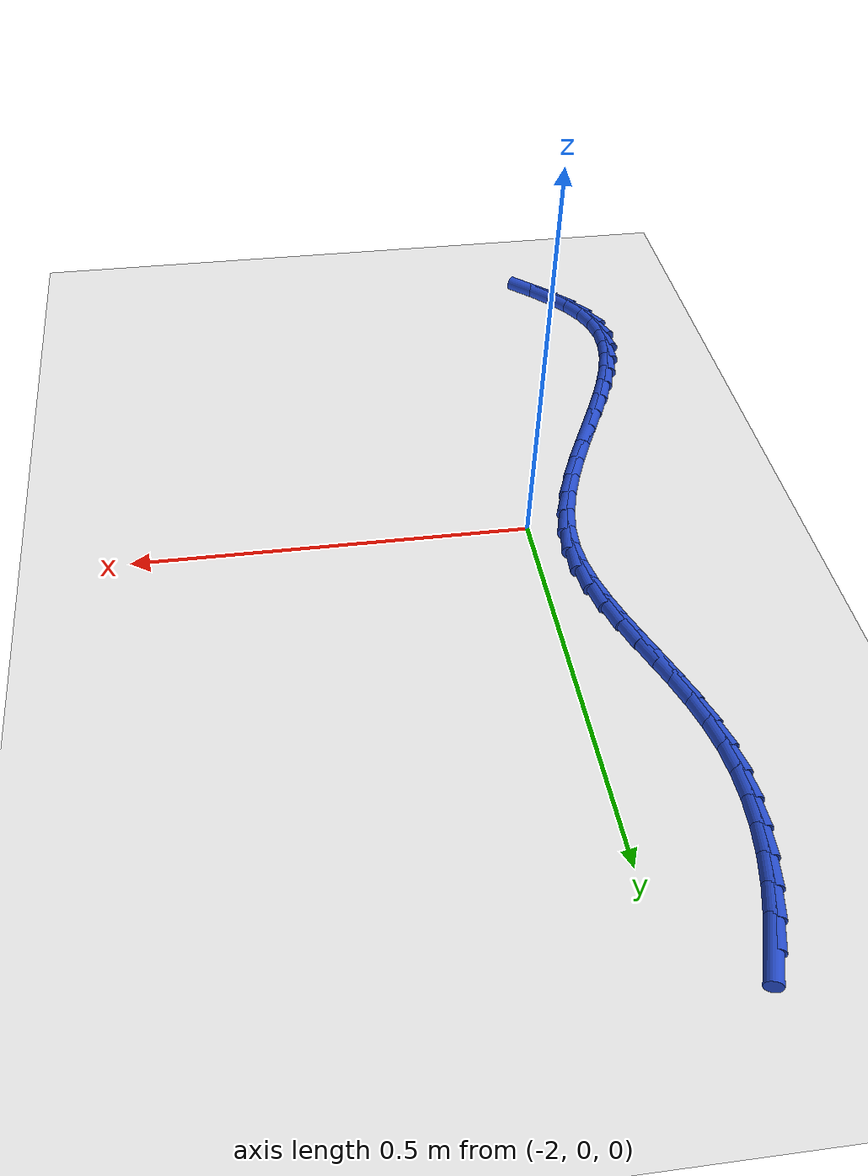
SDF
<sdf version="1.6">
 <world name="default">
  <model name="ground_plane">
   <static>1</static>
   <link name="link">
    <collision name="collision">
     <geometry><plane><normal>0 0 1</normal><size>100 100</size></plane></geometry>
     <surface><friction><ode><mu>100</mu><mu2>50</mu2></ode></friction></surface>
    </collision>
    <visual name="visual">
     <cast_shadows>0</cast_shadows>
     <geometry><plane><normal>0 0 1</normal><size>100 100</size></plane></geometry>
     <material>
      <script><uri>file://media/materials/scripts/gazebo.material</uri><name>Gazebo/WhiteGlow</name></script>
     </material>
    </visual>
   </link>
  </model>
  <model name="line">
   <link name="link_92">
    <pose>-2.102838511471747 0.6065075423157977 0.01 0 1.57 1.2218075934569517</pose>
    <collision name="collision">
     <geometry><cylinder><radius>0.01</radius><length>0.08</length></cylinder></geometry>
    </collision>
    <visual name="visual">
     <material>
      <script><name>Gazebo/Blue</name><uri>file://media/materials/scripts/gazebo.material</uri></script>
     </material>
     <geometry><cylinder><radius>0.01</radius><length>0.08</length></cylinder></geometry>
    </visual>
   </link>
   <link name="link_93">
    <pose>-2.114453274483946 0.5745885846058175 0.01 0 1.57 1.2881082606237912</pose>
    <collision name="collision">
     <geometry><cylinder><radius>0.01</radius><length>0.08</length></cylinder></geometry>
    </collision>
    <visual name="visual">
     <material>
      <script><name>Gazebo/Blue</name><uri>file://media/materials/scripts/gazebo.material</uri></script>
     </material>
     <geometry><cylinder><radius>0.01</radius><length>0.08</length></cylinder></geometry>
    </visual>
   </link>
   <link name="link_94">
    <pose>-2.1239597318940926 0.5418603915994057 0.01 0 1.57 1.3565881906018822</pose>
    <collision name="collision">
     <geometry><cylinder><radius>0.01</radius><length>0.08</length></cylinder></geometry>
    </collision>
    <visual name="visual">
     <material>
      <script><name>Gazebo/Blue</name><uri>file://media/materials/scripts/gazebo.material</uri></script>
     </material>
     <geometry><cylinder><radius>0.01</radius><length>0.08</length></cylinder></geometry>
    </visual>
   </link>
   <link name="link_95">
    <pose>-2.131209856433984 0.5085334928047134 0.01 0 1.57 1.4280469799502449</pose>
    <collision name="collision">
     <geometry><cylinder><radius>0.01</radius><length>0.08</length></cylinder></geometry>
    </collision>
    <visual name="visual">
     <material>
      <script><name>Gazebo/Blue</name><uri>file://media/materials/scripts/gazebo.material</uri></script>
     </material>
     <geometry><cylinder><radius>0.01</radius><length>0.08</length></cylinder></geometry>
    </visual>
   </link>
   <link name="link_96">
    <pose>-2.136055620835418 0.47481841772989336 0.01 0 1.57 1.5032335504921208</pose>
    <collision name="collision">
     <geometry><cylinder><radius>0.01</radius><length>0.08</length></cylinder></geometry>
    </collision>
    <visual name="visual">
     <material>
      <script><name>Gazebo/Blue</name><uri>file://media/materials/scripts/gazebo.material</uri></script>
     </material>
     <geometry><cylinder><radius>0.01</radius><length>0.08</length></cylinder></geometry>
    </visual>
   </link>
   <link name="link_97">
    <pose>-2.138348997830191 0.440925695883097 0.01 0 1.57 -1.5587756531766483</pose>
    <collision name="collision">
     <geometry><cylinder><radius>0.01</radius><length>0.08</length></cylinder></geometry>
    </collision>
    <visual name="visual">
     <material>
      <script><name>Gazebo/Blue</name><uri>file://media/materials/scripts/gazebo.material</uri></script>
     </material>
     <geometry><cylinder><radius>0.01</radius><length>0.08</length></cylinder></geometry>
    </visual>
   </link>
   <link name="link_98">
    <pose>-2.137941960150101 0.4070658567724758 0.01 0 1.57 -1.4742554450893834</pose>
    <collision name="collision">
     <geometry><cylinder><radius>0.01</radius><length>0.08</length></cylinder></geometry>
    </collision>
    <visual name="visual">
     <material>
      <script><name>Gazebo/Blue</name><uri>file://media/materials/scripts/gazebo.material</uri></script>
     </material>
     <geometry><cylinder><radius>0.01</radius><length>0.08</length></cylinder></geometry>
    </visual>
   </link>
   <link name="link_99">
    <pose>-2.134686480526944 0.37344942990618246 0.01 0 1.57 -1.3850708267358485</pose>
    <collision name="collision">
     <geometry><cylinder><radius>0.01</radius><length>0.08</length></cylinder></geometry>
    </collision>
    <visual name="visual">
     <material>
      <script><name>Gazebo/Blue</name><uri>file://media/materials/scripts/gazebo.material</uri></script>
     </material>
     <geometry><cylinder><radius>0.01</radius><length>0.08</length></cylinder></geometry>
    </visual>
   </link>
   <link name="link_100">
    <pose>-2.1284543073538105 0.34028031528387676 0.01 0 1.57 -1.305078085936975</pose>
    <collision name="collision">
     <geometry><cylinder><radius>0.01</radius><length>0.08</length></cylinder></geometry>
    </collision>
    <visual name="visual">
     <material>
      <script><name>Gazebo/Blue</name><uri>file://media/materials/scripts/gazebo.material</uri></script>
     </material>
     <geometry><cylinder><radius>0.01</radius><length>0.08</length></cylinder></geometry>
    </visual>
   </link>
   <link name="link_101">
    <pose>-2.119563697719999 0.30761272723103633 0.01 0 1.57 -1.2480549285319291</pose>
    <collision name="collision">
     <geometry><cylinder><radius>0.01</radius><length>0.08</length></cylinder></geometry>
    </collision>
    <visual name="visual">
     <material>
      <script><name>Gazebo/Blue</name><uri>file://media/materials/scripts/gazebo.material</uri></script>
     </material>
     <geometry><cylinder><radius>0.01</radius><length>0.08</length></cylinder></geometry>
    </visual>
   </link>
   <link name="link_102">
    <pose>-2.1087748372616453 0.27535272982872666 0.01 0 1.57 -1.2140626401845627</pose>
    <collision name="collision">
     <geometry><cylinder><radius>0.01</radius><length>0.08</length></cylinder></geometry>
    </collision>
    <visual name="visual">
     <material>
      <script><name>Gazebo/Blue</name><uri>file://media/materials/scripts/gazebo.material</uri></script>
     </material>
     <geometry><cylinder><radius>0.01</radius><length>0.08</length></cylinder></geometry>
    </visual>
   </link>
   <link name="link_103">
    <pose>-2.0968667712157782 0.2434000647457121 0.01 0 1.57 -1.202569629736349</pose>
    <collision name="collision">
     <geometry><cylinder><radius>0.01</radius><length>0.08</length></cylinder></geometry>
    </collision>
    <visual name="visual">
     <material>
      <script><name>Gazebo/Blue</name><uri>file://media/materials/scripts/gazebo.material</uri></script>
     </material>
     <geometry><cylinder><radius>0.01</radius><length>0.08</length></cylinder></geometry>
    </visual>
   </link>
   <link name="link_104">
    <pose>-2.084618544819424 0.21165447365075574 0.01 0 1.57 -1.21355610846521</pose>
    <collision name="collision">
     <geometry><cylinder><radius>0.01</radius><length>0.08</length></cylinder></geometry>
    </collision>
    <visual name="visual">
     <material>
      <script><name>Gazebo/Blue</name><uri>file://media/materials/scripts/gazebo.material</uri></script>
     </material>
     <geometry><cylinder><radius>0.01</radius><length>0.08</length></cylinder></geometry>
    </visual>
   </link>
   <link name="link_105">
    <pose>-2.072809203309611 0.1800156982126221 0.01 0 1.57 -1.2476994972588684</pose>
    <collision name="collision">
     <geometry><cylinder><radius>0.01</radius><length>0.08</length></cylinder></geometry>
    </collision>
    <visual name="visual">
     <material>
      <script><name>Gazebo/Blue</name><uri>file://media/materials/scripts/gazebo.material</uri></script>
     </material>
     <geometry><cylinder><radius>0.01</radius><length>0.08</length></cylinder></geometry>
    </visual>
   </link>
   <link name="link_106">
    <pose>-2.0622177919233664 0.14838348010007413 0.01 0 1.57 -1.3062492250781679</pose>
    <collision name="collision">
     <geometry><cylinder><radius>0.01</radius><length>0.08</length></cylinder></geometry>
    </collision>
    <visual name="visual">
     <material>
      <script><name>Gazebo/Blue</name><uri>file://media/materials/scripts/gazebo.material</uri></script>
     </material>
     <geometry><cylinder><radius>0.01</radius><length>0.08</length></cylinder></geometry>
    </visual>
   </link>
   <link name="link_107">
    <pose>-2.053623355897717 0.11665756098187632 0.01 0 1.57 -1.39049400461393</pose>
    <collision name="collision">
     <geometry><cylinder><radius>0.01</radius><length>0.08</length></cylinder></geometry>
    </collision>
    <visual name="visual">
     <material>
      <script><name>Gazebo/Blue</name><uri>file://media/materials/scripts/gazebo.material</uri></script>
     </material>
     <geometry><cylinder><radius>0.01</radius><length>0.08</length></cylinder></geometry>
    </visual>
   </link>
   <link name="link_108">
    <pose>-2.0478049404696903 0.08473768252679163 0.01 0 1.57 -1.500651993036925</pose>
    <collision name="collision">
     <geometry><cylinder><radius>0.01</radius><length>0.08</length></cylinder></geometry>
    </collision>
    <visual name="visual">
     <material>
      <script><name>Gazebo/Blue</name><uri>file://media/materials/scripts/gazebo.material</uri></script>
     </material>
     <geometry><cylinder><radius>0.01</radius><length>0.08</length></cylinder></geometry>
    </visual>
   </link>
   <link name="link_109">
    <pose>-2.0455415908763137 0.052523586403584656 0.01 0 1.57 1.5087250824914546</pose>
    <collision name="collision">
     <geometry><cylinder><radius>0.01</radius><length>0.08</length></cylinder></geometry>
    </collision>
    <visual name="visual">
     <material>
      <script><name>Gazebo/Blue</name><uri>file://media/materials/scripts/gazebo.material</uri></script>
     </material>
     <geometry><cylinder><radius>0.01</radius><length>0.08</length></cylinder></geometry>
    </visual>
   </link>
   <link name="link_110">
    <pose>-2.047567869475217 0.01992112057104062 0.01 0 1.57 1.3828398089463911</pose>
    <collision name="collision">
     <geometry><cylinder><radius>0.01</radius><length>0.08</length></cylinder></geometry>
    </collision>
    <visual name="visual">
     <material>
      <script><name>Gazebo/Blue</name><uri>file://media/materials/scripts/gazebo.material</uri></script>
     </material>
     <geometry><cylinder><radius>0.01</radius><length>0.08</length></cylinder></geometry>
    </visual>
   </link>
   <link name="link_111">
    <pose>-2.0538403748914114 -0.013057073741417945 0.01 0 1.57 1.2838125766833128</pose>
    <collision name="collision">
     <geometry><cylinder><radius>0.01</radius><length>0.08</length></cylinder></geometry>
    </collision>
    <visual name="visual">
     <material>
      <script><name>Gazebo/Blue</name><uri>file://media/materials/scripts/gazebo.material</uri></script>
     </material>
     <geometry><cylinder><radius>0.01</radius><length>0.08</length></cylinder></geometry>
    </visual>
   </link>
   <link name="link_112">
    <pose>-2.0636535922632566 -0.04630746512298108 0.01 0 1.57 1.2095032991442067</pose>
    <collision name="collision">
     <geometry><cylinder><radius>0.01</radius><length>0.08</length></cylinder></geometry>
    </collision>
    <visual name="visual">
     <material>
      <script><name>Gazebo/Blue</name><uri>file://media/materials/scripts/gazebo.material</uri></script>
     </material>
     <geometry><cylinder><radius>0.01</radius><length>0.08</length></cylinder></geometry>
    </visual>
   </link>
   <link name="link_113">
    <pose>-2.0762808829030615 -0.07972362243579727 0.01 0 1.57 1.156652188542412</pose>
    <collision name="collision">
     <geometry><cylinder><radius>0.01</radius><length>0.08</length></cylinder></geometry>
    </collision>
    <visual name="visual">
     <material>
      <script><name>Gazebo/Blue</name><uri>file://media/materials/scripts/gazebo.material</uri></script>
     </material>
     <geometry><cylinder><radius>0.01</radius><length>0.08</length></cylinder></geometry>
    </visual>
   </link>
   <link name="link_114">
    <pose>-2.0909956081231322 -0.11319911454201566 0.01 0 1.57 1.1225498624169066</pose>
    <collision name="collision">
     <geometry><cylinder><radius>0.01</radius><length>0.08</length></cylinder></geometry>
    </collision>
    <visual name="visual">
     <material>
      <script><name>Gazebo/Blue</name><uri>file://media/materials/scripts/gazebo.material</uri></script>
     </material>
     <geometry><cylinder><radius>0.01</radius><length>0.08</length></cylinder></geometry>
    </visual>
   </link>
   <link name="link_115">
    <pose>-2.107071129235777 -0.1466275103037831 0.01 0 1.57 1.105413319932485</pose>
    <collision name="collision">
     <geometry><cylinder><radius>0.01</radius><length>0.08</length></cylinder></geometry>
    </collision>
    <visual name="visual">
     <material>
      <script><name>Gazebo/Blue</name><uri>file://media/materials/scripts/gazebo.material</uri></script>
     </material>
     <geometry><cylinder><radius>0.01</radius><length>0.08</length></cylinder></geometry>
    </visual>
   </link>
   <link name="link_116">
    <pose>-2.123780807553301 -0.17990237858324865 0.01 0 1.57 1.1044930442519634</pose>
    <collision name="collision">
     <geometry><cylinder><radius>0.01</radius><length>0.08</length></cylinder></geometry>
    </collision>
    <visual name="visual">
     <material>
      <script><name>Gazebo/Blue</name><uri>file://media/materials/scripts/gazebo.material</uri></script>
     </material>
     <geometry><cylinder><radius>0.01</radius><length>0.08</length></cylinder></geometry>
    </visual>
   </link>
   <link name="link_117">
    <pose>-2.1403980043880133 -0.21291728824256081 0.01 0 1.57 1.1201249308080306</pose>
    <collision name="collision">
     <geometry><cylinder><radius>0.01</radius><length>0.08</length></cylinder></geometry>
    </collision>
    <visual name="visual">
     <material>
      <script><name>Gazebo/Blue</name><uri>file://media/materials/scripts/gazebo.material</uri></script>
     </material>
     <geometry><cylinder><radius>0.01</radius><length>0.08</length></cylinder></geometry>
    </visual>
   </link>
   <link name="link_118">
    <pose>-2.156196081052221 -0.24556580814386889 0.01 0 1.57 1.1538182387211169</pose>
    <collision name="collision">
     <geometry><cylinder><radius>0.01</radius><length>0.08</length></cylinder></geometry>
    </collision>
    <visual name="visual">
     <material>
      <script><name>Gazebo/Blue</name><uri>file://media/materials/scripts/gazebo.material</uri></script>
     </material>
     <geometry><cylinder><radius>0.01</radius><length>0.08</length></cylinder></geometry>
    </visual>
   </link>
   <link name="link_119">
    <pose>-2.1704483988582304 -0.2777415071493195 0.01 0 1.57 1.2083887486402523</pose>
    <collision name="collision">
     <geometry><cylinder><radius>0.01</radius><length>0.08</length></cylinder></geometry>
    </collision>
    <visual name="visual">
     <material>
      <script><name>Gazebo/Blue</name><uri>file://media/materials/scripts/gazebo.material</uri></script>
     </material>
     <geometry><cylinder><radius>0.01</radius><length>0.08</length></cylinder></geometry>
    </visual>
   </link>
   <link name="link_120">
    <pose>-2.1824283191183484 -0.3093379541210619 0.01 0 1.57 1.2880387582232953</pose>
    <collision name="collision">
     <geometry><cylinder><radius>0.01</radius><length>0.08</length></cylinder></geometry>
    </collision>
    <visual name="visual">
     <material>
      <script><name>Gazebo/Blue</name><uri>file://media/materials/scripts/gazebo.material</uri></script>
     </material>
     <geometry><cylinder><radius>0.01</radius><length>0.08</length></cylinder></geometry>
    </visual>
   </link>
   <link name="link_121">
    <pose>-2.191409203144883 -0.3402487179212445 0.01 0 1.57 1.398051800829264</pose>
    <collision name="collision">
     <geometry><cylinder><radius>0.01</radius><length>0.08</length></cylinder></geometry>
    </collision>
    <visual name="visual">
     <material>
      <script><name>Gazebo/Blue</name><uri>file://media/materials/scripts/gazebo.material</uri></script>
     </material>
     <geometry><cylinder><radius>0.01</radius><length>0.08</length></cylinder></geometry>
    </visual>
   </link>
   <link name="link_122">
    <pose>-2.1966644122501418 -0.37036736741201653 0.01 0 1.57 1.5433257359639034</pose>
    <collision name="collision">
     <geometry><cylinder><radius>0.01</radius><length>0.08</length></cylinder></geometry>
    </collision>
    <visual name="visual">
     <material>
      <script><name>Gazebo/Blue</name><uri>file://media/materials/scripts/gazebo.material</uri></script>
     </material>
     <geometry><cylinder><radius>0.01</radius><length>0.08</length></cylinder></geometry>
    </visual>
   </link>
   <link name="link_123">
    <pose>-2.19746730774643 -0.39958747145552453 0.01 0 1.57 -1.416926162928389</pose>
    <collision name="collision">
     <geometry><cylinder><radius>0.01</radius><length>0.08</length></cylinder></geometry>
    </collision>
    <visual name="visual">
     <material>
      <script><name>Gazebo/Blue</name><uri>file://media/materials/scripts/gazebo.material</uri></script>
     </material>
     <geometry><cylinder><radius>0.01</radius><length>0.08</length></cylinder></geometry>
    </visual>
   </link>
   <link name="link_124">
    <pose>-2.193091250946057 -0.42780259891391825 0.01 0 1.57 -1.2092049873443342</pose>
    <collision name="collision">
     <geometry><cylinder><radius>0.01</radius><length>0.08</length></cylinder></geometry>
    </collision>
    <visual name="visual">
     <material>
      <script><name>Gazebo/Blue</name><uri>file://media/materials/scripts/gazebo.material</uri></script>
     </material>
     <geometry><cylinder><radius>0.01</radius><length>0.08</length></cylinder></geometry>
    </visual>
   </link>
   <link name="link_125">
    <pose>-2.1828383455888876 -0.4549108567219041 0.01 0 1.57 -1.0210947088530165</pose>
    <collision name="collision">
     <geometry><cylinder><radius>0.01</radius><length>0.08</length></cylinder></geometry>
    </collision>
    <visual name="visual">
     <material>
      <script><name>Gazebo/Blue</name><uri>file://media/materials/scripts/gazebo.material</uri></script>
     </material>
     <geometry><cylinder><radius>0.01</radius><length>0.08</length></cylinder></geometry>
    </visual>
   </link>
   <link name="link_126">
    <pose>-2.166885258525212 -0.4809484344741929 0.01 0 1.57 -0.8880262374881216</pose>
    <collision name="collision">
     <geometry><cylinder><radius>0.01</radius><length>0.08</length></cylinder></geometry>
    </collision>
    <visual name="visual">
     <material>
      <script><name>Gazebo/Blue</name><uri>file://media/materials/scripts/gazebo.material</uri></script>
     </material>
     <geometry><cylinder><radius>0.01</radius><length>0.08</length></cylinder></geometry>
    </visual>
   </link>
   <link name="link_127">
    <pose>-2.146421380956617 -0.5061114183705624 0.01 0 1.57 -0.8012545113045876</pose>
    <collision name="collision">
     <geometry><cylinder><radius>0.01</radius><length>0.08</length></cylinder></geometry>
    </collision>
    <visual name="visual">
     <material>
      <script><name>Gazebo/Blue</name><uri>file://media/materials/scripts/gazebo.material</uri></script>
     </material>
     <geometry><cylinder><radius>0.01</radius><length>0.08</length></cylinder></geometry>
    </visual>
   </link>
   <link name="link_128">
    <pose>-2.1226926652465083 -0.5306048249162038 0.01 0 1.57 -0.75088237751066</pose>
    <collision name="collision">
     <geometry><cylinder><radius>0.01</radius><length>0.08</length></cylinder></geometry>
    </collision>
    <visual name="visual">
     <material>
      <script><name>Gazebo/Blue</name><uri>file://media/materials/scripts/gazebo.material</uri></script>
     </material>
     <geometry><cylinder><radius>0.01</radius><length>0.08</length></cylinder></geometry>
    </visual>
   </link>
  </model>
 </world>
</sdf>
